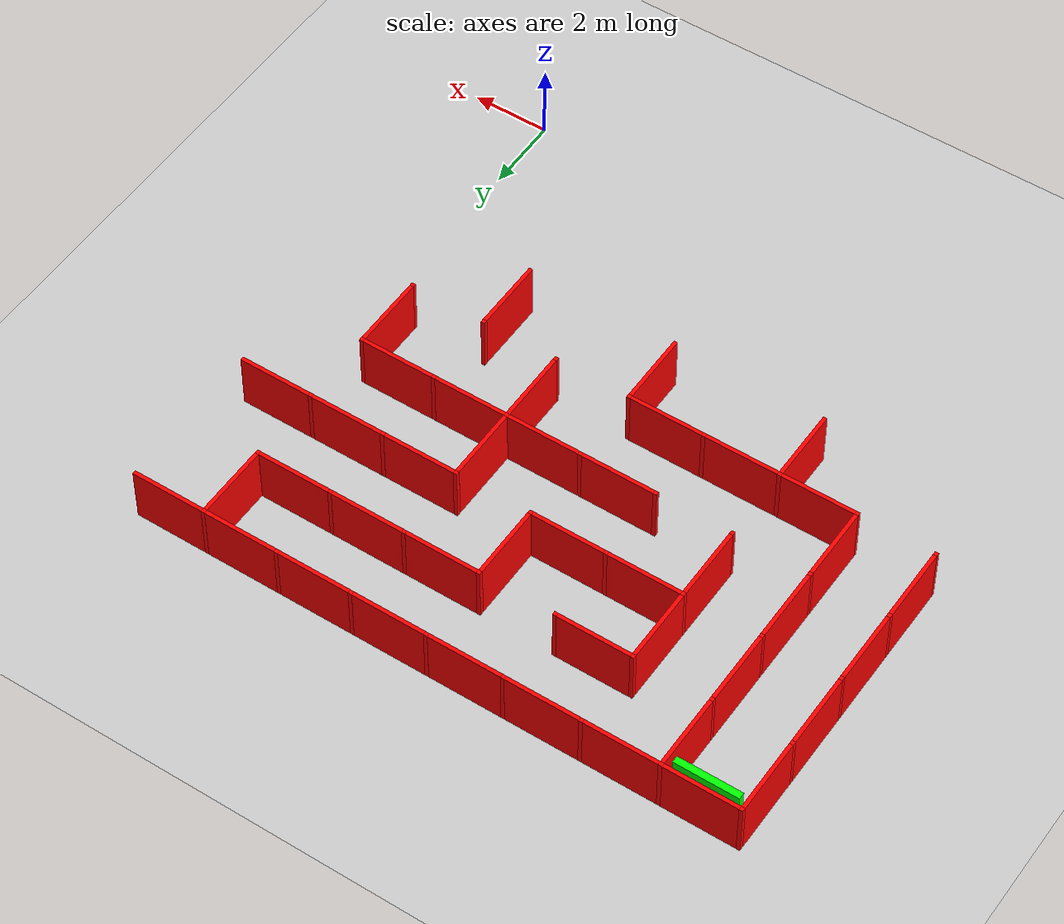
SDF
<sdf version="1.7">
 <world name="empty">
  <model name="ground_plane">
   <static>true</static>
   <link name="link">
    <collision name="collision1">
     <geometry><plane><normal>0 0 1</normal><size>1 1</size></plane></geometry>
    </collision>
    <visual name="visual1"><geometry><plane><normal>0 0 1</normal><size>100 100</size></plane></geometry></visual>
   </link>
  </model>
  <model name="Untitled">
   <link name="Wall_0_0_h">
    <collision name="Wall_0_Collision">
     <geometry><box><size>1.9 0.1 1.5</size></box></geometry>
     <pose>0 0 0.75 0 -0 0</pose>
    </collision>
    <visual name="Wall_0_Visual">
     <pose>0 0 0.75 0 -0 0</pose>
     <geometry><box><size>1.9 0.1 1.5</size></box></geometry>
     <material><ambient>1 0 0 1</ambient><diffuse>1 0 0 1</diffuse><specular>0.1 0.1 0.1 1</specular></material>
     <meta><layer>0</layer></meta>
    </visual>
    <pose>-14 15 0 0 -0 0</pose>
   </link>
   <link name="Wall_0_0_v">
    <collision name="Wall_0_Collision">
     <geometry><box><size>1.9 0.1 1.5</size></box></geometry>
     <pose>0 0 0.75 0 -0 0</pose>
    </collision>
    <visual name="Wall_0_Visual">
     <pose>0 0 0.75 0 -0 0</pose>
     <geometry><box><size>1.9 0.1 1.5</size></box></geometry>
     <material><ambient>1 0 0 1</ambient><diffuse>1 0 0 1</diffuse><specular>0.1 0.1 0.1 1</specular></material>
     <meta><layer>0</layer></meta>
    </visual>
    <pose>-15 14 0 0 -0 1.5708</pose>
   </link>
   <link name="Joint_-15_15">
    <collision name="Wall_2_Collision">
     <geometry><box><size>0.1 0.1 1.5</size></box></geometry>
     <pose>0 0 0.75 0 -0 0</pose>
    </collision>
    <visual name="Wall_2_Visual">
     <pose>0 0 0.75 0 -0 0</pose>
     <geometry><box><size>0.1 0.1 1.5</size></box></geometry>
     <material><ambient>1 0 0 1</ambient><diffuse>1 0 0 1</diffuse><specular>0.1 0.1 0.1 1</specular></material>
     <meta><layer>0</layer></meta>
    </visual>
    <pose>-15 15 0 0 -0 0</pose>
   </link>
   <link name="Wall_1_0_h">
    <collision name="Wall_0_Collision">
     <geometry><box><size>1.9 0.1 1.5</size></box></geometry>
     <pose>0 0 0.75 0 -0 0</pose>
    </collision>
    <visual name="Wall_0_Visual">
     <pose>0 0 0.75 0 -0 0</pose>
     <geometry><box><size>1.9 0.1 1.5</size></box></geometry>
     <material><ambient>1 0 0 1</ambient><diffuse>1 0 0 1</diffuse><specular>0.1 0.1 0.1 1</specular></material>
     <meta><layer>0</layer></meta>
    </visual>
    <pose>-12 15 0 0 -0 0</pose>
   </link>
   <link name="Wall_1_0_v">
    <collision name="Wall_0_Collision">
     <geometry><box><size>1.9 0.1 1.5</size></box></geometry>
     <pose>0 0 0.75 0 -0 0</pose>
    </collision>
    <visual name="Wall_0_Visual">
     <pose>0 0 0.75 0 -0 0</pose>
     <geometry><box><size>1.9 0.1 1.5</size></box></geometry>
     <material><ambient>1 0 0 1</ambient><diffuse>1 0 0 1</diffuse><specular>0.1 0.1 0.1 1</specular></material>
     <meta><layer>0</layer></meta>
    </visual>
    <pose>-13 14 0 0 -0 1.5708</pose>
   </link>
   <link name="Joint_-13_15">
    <collision name="Wall_2_Collision">
     <geometry><box><size>0.1 0.1 1.5</size></box></geometry>
     <pose>0 0 0.75 0 -0 0</pose>
    </collision>
    <visual name="Wall_2_Visual">
     <pose>0 0 0.75 0 -0 0</pose>
     <geometry><box><size>0.1 0.1 1.5</size></box></geometry>
     <material><ambient>1 0 0 1</ambient><diffuse>1 0 0 1</diffuse><specular>0.1 0.1 0.1 1</specular></material>
     <meta><layer>0</layer></meta>
    </visual>
    <pose>-13 15 0 0 -0 0</pose>
   </link>
   <link name="Wall_2_0_h">
    <collision name="Wall_0_Collision">
     <geometry><box><size>1.9 0.1 1.5</size></box></geometry>
     <pose>0 0 0.75 0 -0 0</pose>
    </collision>
    <visual name="Wall_0_Visual">
     <pose>0 0 0.75 0 -0 0</pose>
     <geometry><box><size>1.9 0.1 1.5</size></box></geometry>
     <material><ambient>1 0 0 1</ambient><diffuse>1 0 0 1</diffuse><specular>0.1 0.1 0.1 1</specular></material>
     <meta><layer>0</layer></meta>
    </visual>
    <pose>-10 15 0 0 -0 0</pose>
   </link>
   <link name="Joint_-11_15">
    <collision name="Wall_2_Collision">
     <geometry><box><size>0.1 0.1 1.5</size></box></geometry>
     <pose>0 0 0.75 0 -0 0</pose>
    </collision>
    <visual name="Wall_2_Visual">
     <pose>0 0 0.75 0 -0 0</pose>
     <geometry><box><size>0.1 0.1 1.5</size></box></geometry>
     <material><ambient>1 0 0 1</ambient><diffuse>1 0 0 1</diffuse><specular>0.1 0.1 0.1 1</specular></material>
     <meta><layer>0</layer></meta>
    </visual>
    <pose>-11 15 0 0 -0 0</pose>
   </link>
   <link name="Wall_3_0_h">
    <collision name="Wall_0_Collision">
     <geometry><box><size>1.9 0.1 1.5</size></box></geometry>
     <pose>0 0 0.75 0 -0 0</pose>
    </collision>
    <visual name="Wall_0_Visual">
     <pose>0 0 0.75 0 -0 0</pose>
     <geometry><box><size>1.9 0.1 1.5</size></box></geometry>
     <material><ambient>1 0 0 1</ambient><diffuse>1 0 0 1</diffuse><specular>0.1 0.1 0.1 1</specular></material>
     <meta><layer>0</layer></meta>
    </visual>
    <pose>-8 15 0 0 -0 0</pose>
   </link>
   <link name="Joint_-9_15">
    <collision name="Wall_2_Collision">
     <geometry><box><size>0.1 0.1 1.5</size></box></geometry>
     <pose>0 0 0.75 0 -0 0</pose>
    </collision>
    <visual name="Wall_2_Visual">
     <pose>0 0 0.75 0 -0 0</pose>
     <geometry><box><size>0.1 0.1 1.5</size></box></geometry>
     <material><ambient>1 0 0 1</ambient><diffuse>1 0 0 1</diffuse><specular>0.1 0.1 0.1 1</specular></material>
     <meta><layer>0</layer></meta>
    </visual>
    <pose>-9 15 0 0 -0 0</pose>
   </link>
   <link name="Wall_4_0_h">
    <collision name="Wall_0_Collision">
     <geometry><box><size>1.9 0.1 1.5</size></box></geometry>
     <pose>0 0 0.75 0 -0 0</pose>
    </collision>
    <visual name="Wall_0_Visual">
     <pose>0 0 0.75 0 -0 0</pose>
     <geometry><box><size>1.9 0.1 1.5</size></box></geometry>
     <material><ambient>1 0 0 1</ambient><diffuse>1 0 0 1</diffuse><specular>0.1 0.1 0.1 1</specular></material>
     <meta><layer>0</layer></meta>
    </visual>
    <pose>-6 15 0 0 -0 0</pose>
   </link>
   <link name="Joint_-7_15">
    <collision name="Wall_2_Collision">
     <geometry><box><size>0.1 0.1 1.5</size></box></geometry>
     <pose>0 0 0.75 0 -0 0</pose>
    </collision>
    <visual name="Wall_2_Visual">
     <pose>0 0 0.75 0 -0 0</pose>
     <geometry><box><size>0.1 0.1 1.5</size></box></geometry>
     <material><ambient>1 0 0 1</ambient><diffuse>1 0 0 1</diffuse><specular>0.1 0.1 0.1 1</specular></material>
     <meta><layer>0</layer></meta>
    </visual>
    <pose>-7 15 0 0 -0 0</pose>
   </link>
   <link name="Wall_5_0_h">
    <collision name="Wall_0_Collision">
     <geometry><box><size>1.9 0.1 1.5</size></box></geometry>
     <pose>0 0 0.75 0 -0 0</pose>
    </collision>
    <visual name="Wall_0_Visual">
     <pose>0 0 0.75 0 -0 0</pose>
     <geometry><box><size>1.9 0.1 1.5</size></box></geometry>
     <material><ambient>1 0 0 1</ambient><diffuse>1 0 0 1</diffuse><specular>0.1 0.1 0.1 1</specular></material>
     <meta><layer>0</layer></meta>
    </visual>
    <pose>-4 15 0 0 -0 0</pose>
   </link>
   <link name="Joint_-5_15">
    <collision name="Wall_2_Collision">
     <geometry><box><size>0.1 0.1 1.5</size></box></geometry>
     <pose>0 0 0.75 0 -0 0</pose>
    </collision>
    <visual name="Wall_2_Visual">
     <pose>0 0 0.75 0 -0 0</pose>
     <geometry><box><size>0.1 0.1 1.5</size></box></geometry>
     <material><ambient>1 0 0 1</ambient><diffuse>1 0 0 1</diffuse><specular>0.1 0.1 0.1 1</specular></material>
     <meta><layer>0</layer></meta>
    </visual>
    <pose>-5 15 0 0 -0 0</pose>
   </link>
   <link name="Wall_6_0_h">
    <collision name="Wall_0_Collision">
     <geometry><box><size>1.9 0.1 1.5</size></box></geometry>
     <pose>0 0 0.75 0 -0 0</pose>
    </collision>
    <visual name="Wall_0_Visual">
     <pose>0 0 0.75 0 -0 0</pose>
     <geometry><box><size>1.9 0.1 1.5</size></box></geometry>
     <material><ambient>1 0 0 1</ambient><diffuse>1 0 0 1</diffuse><specular>0.1 0.1 0.1 1</specular></material>
     <meta><layer>0</layer></meta>
    </visual>
    <pose>-2 15 0 0 -0 0</pose>
   </link>
   <link name="Joint_-3_15">
    <collision name="Wall_2_Collision">
     <geometry><box><size>0.1 0.1 1.5</size></box></geometry>
     <pose>0 0 0.75 0 -0 0</pose>
    </collision>
    <visual name="Wall_2_Visual">
     <pose>0 0 0.75 0 -0 0</pose>
     <geometry><box><size>0.1 0.1 1.5</size></box></geometry>
     <material><ambient>1 0 0 1</ambient><diffuse>1 0 0 1</diffuse><specular>0.1 0.1 0.1 1</specular></material>
     <meta><layer>0</layer></meta>
    </visual>
    <pose>-3 15 0 0 -0 0</pose>
   </link>
   <link name="Wall_7_0_h">
    <collision name="Wall_0_Collision">
     <geometry><box><size>1.9 0.1 1.5</size></box></geometry>
     <pose>0 0 0.75 0 -0 0</pose>
    </collision>
    <visual name="Wall_0_Visual">
     <pose>0 0 0.75 0 -0 0</pose>
     <geometry><box><size>1.9 0.1 1.5</size></box></geometry>
     <material><ambient>1 0 0 1</ambient><diffuse>1 0 0 1</diffuse><specular>0.1 0.1 0.1 1</specular></material>
     <meta><layer>0</layer></meta>
    </visual>
    <pose>0 15 0 0 -0 0</pose>
   </link>
   <link name="Wall_7_0_v">
    <collision name="Wall_0_Collision">
     <geometry><box><size>1.9 0.1 1.5</size></box></geometry>
     <pose>0 0 0.75 0 -0 0</pose>
    </collision>
    <visual name="Wall_0_Visual">
     <pose>0 0 0.75 0 -0 0</pose>
     <geometry><box><size>1.9 0.1 1.5</size></box></geometry>
     <material><ambient>1 0 0 1</ambient><diffuse>1 0 0 1</diffuse><specular>0.1 0.1 0.1 1</specular></material>
     <meta><layer>0</layer></meta>
    </visual>
    <pose>-1 14 0 0 -0 1.5708</pose>
   </link>
   <link name="Joint_-1_15">
    <collision name="Wall_2_Collision">
     <geometry><box><size>0.1 0.1 1.5</size></box></geometry>
     <pose>0 0 0.75 0 -0 0</pose>
    </collision>
    <visual name="Wall_2_Visual">
     <pose>0 0 0.75 0 -0 0</pose>
     <geometry><box><size>0.1 0.1 1.5</size></box></geometry>
     <material><ambient>1 0 0 1</ambient><diffuse>1 0 0 1</diffuse><specular>0.1 0.1 0.1 1</specular></material>
     <meta><layer>0</layer></meta>
    </visual>
    <pose>-1 15 0 0 -0 0</pose>
   </link>
   <link name="Wall_0_1_v">
    <collision name="Wall_0_Collision">
     <geometry><box><size>1.9 0.1 1.5</size></box></geometry>
     <pose>0 0 0.75 0 -0 0</pose>
    </collision>
    <visual name="Wall_0_Visual">
     <pose>0 0 0.75 0 -0 0</pose>
     <geometry><box><size>1.9 0.1 1.5</size></box></geometry>
     <material><ambient>1 0 0 1</ambient><diffuse>1 0 0 1</diffuse><specular>0.1 0.1 0.1 1</specular></material>
     <meta><layer>0</layer></meta>
    </visual>
    <pose>-15 12 0 0 -0 1.5708</pose>
   </link>
   <link name="Joint_-15_13">
    <collision name="Wall_2_Collision">
     <geometry><box><size>0.1 0.1 1.5</size></box></geometry>
     <pose>0 0 0.75 0 -0 0</pose>
    </collision>
    <visual name="Wall_2_Visual">
     <pose>0 0 0.75 0 -0 0</pose>
     <geometry><box><size>0.1 0.1 1.5</size></box></geometry>
     <material><ambient>1 0 0 1</ambient><diffuse>1 0 0 1</diffuse><specular>0.1 0.1 0.1 1</specular></material>
     <meta><layer>0</layer></meta>
    </visual>
    <pose>-15 13 0 0 -0 0</pose>
   </link>
   <link name="Wall_1_1_v">
    <collision name="Wall_0_Collision">
     <geometry><box><size>1.9 0.1 1.5</size></box></geometry>
     <pose>0 0 0.75 0 -0 0</pose>
    </collision>
    <visual name="Wall_0_Visual">
     <pose>0 0 0.75 0 -0 0</pose>
     <geometry><box><size>1.9 0.1 1.5</size></box></geometry>
     <material><ambient>1 0 0 1</ambient><diffuse>1 0 0 1</diffuse><specular>0.1 0.1 0.1 1</specular></material>
     <meta><layer>0</layer></meta>
    </visual>
    <pose>-13 12 0 0 -0 1.5708</pose>
   </link>
   <link name="Joint_-13_13">
    <collision name="Wall_2_Collision">
     <geometry><box><size>0.1 0.1 1.5</size></box></geometry>
     <pose>0 0 0.75 0 -0 0</pose>
    </collision>
    <visual name="Wall_2_Visual">
     <pose>0 0 0.75 0 -0 0</pose>
     <geometry><box><size>0.1 0.1 1.5</size></box></geometry>
     <material><ambient>1 0 0 1</ambient><diffuse>1 0 0 1</diffuse><specular>0.1 0.1 0.1 1</specular></material>
     <meta><layer>0</layer></meta>
    </visual>
    <pose>-13 13 0 0 -0 0</pose>
   </link>
   <link name="Wall_2_1_h">
    <collision name="Wall_0_Collision">
     <geometry><box><size>1.9 0.1 1.5</size></box></geometry>
     <pose>0 0 0.75 0 -0 0</pose>
    </collision>
    <visual name="Wall_0_Visual">
     <pose>0 0 0.75 0 -0 0</pose>
     <geometry><box><size>1.9 0.1 1.5</size></box></geometry>
     <material><ambient>1 0 0 1</ambient><diffuse>1 0 0 1</diffuse><specular>0.1 0.1 0.1 1</specular></material>
     <meta><layer>0</layer></meta>
    </visual>
    <pose>-10 13 0 0 -0 0</pose>
   </link>
   <link name="Wall_2_1_v">
    <collision name="Wall_0_Collision">
     <geometry><box><size>1.9 0.1 1.5</size></box></geometry>
     <pose>0 0 0.75 0 -0 0</pose>
    </collision>
    <visual name="Wall_0_Visual">
     <pose>0 0 0.75 0 -0 0</pose>
     <geometry><box><size>1.9 0.1 1.5</size></box></geometry>
     <material><ambient>1 0 0 1</ambient><diffuse>1 0 0 1</diffuse><specular>0.1 0.1 0.1 1</specular></material>
     <meta><layer>0</layer></meta>
    </visual>
    <pose>-11 12 0 0 -0 1.5708</pose>
   </link>
   <link name="Joint_-11_13">
    <collision name="Wall_2_Collision">
     <geometry><box><size>0.1 0.1 1.5</size></box></geometry>
     <pose>0 0 0.75 0 -0 0</pose>
    </collision>
    <visual name="Wall_2_Visual">
     <pose>0 0 0.75 0 -0 0</pose>
     <geometry><box><size>0.1 0.1 1.5</size></box></geometry>
     <material><ambient>1 0 0 1</ambient><diffuse>1 0 0 1</diffuse><specular>0.1 0.1 0.1 1</specular></material>
     <meta><layer>0</layer></meta>
    </visual>
    <pose>-11 13 0 0 -0 0</pose>
   </link>
   <link name="Joint_-9_13">
    <collision name="Wall_2_Collision">
     <geometry><box><size>0.1 0.1 1.5</size></box></geometry>
     <pose>0 0 0.75 0 -0 0</pose>
    </collision>
    <visual name="Wall_2_Visual">
     <pose>0 0 0.75 0 -0 0</pose>
     <geometry><box><size>0.1 0.1 1.5</size></box></geometry>
     <material><ambient>1 0 0 1</ambient><diffuse>1 0 0 1</diffuse><specular>0.1 0.1 0.1 1</specular></material>
     <meta><layer>0</layer></meta>
    </visual>
    <pose>-9 13 0 0 -0 0</pose>
   </link>
   <link name="Wall_4_1_h">
    <collision name="Wall_0_Collision">
     <geometry><box><size>1.9 0.1 1.5</size></box></geometry>
     <pose>0 0 0.75 0 -0 0</pose>
    </collision>
    <visual name="Wall_0_Visual">
     <pose>0 0 0.75 0 -0 0</pose>
     <geometry><box><size>1.9 0.1 1.5</size></box></geometry>
     <material><ambient>1 0 0 1</ambient><diffuse>1 0 0 1</diffuse><specular>0.1 0.1 0.1 1</specular></material>
     <meta><layer>0</layer></meta>
    </visual>
    <pose>-6 13 0 0 -0 0</pose>
   </link>
   <link name="Wall_4_1_v">
    <collision name="Wall_0_Collision">
     <geometry><box><size>1.9 0.1 1.5</size></box></geometry>
     <pose>0 0 0.75 0 -0 0</pose>
    </collision>
    <visual name="Wall_0_Visual">
     <pose>0 0 0.75 0 -0 0</pose>
     <geometry><box><size>1.9 0.1 1.5</size></box></geometry>
     <material><ambient>1 0 0 1</ambient><diffuse>1 0 0 1</diffuse><specular>0.1 0.1 0.1 1</specular></material>
     <meta><layer>0</layer></meta>
    </visual>
    <pose>-7 12 0 0 -0 1.5708</pose>
   </link>
   <link name="Joint_-7_13">
    <collision name="Wall_2_Collision">
     <geometry><box><size>0.1 0.1 1.5</size></box></geometry>
     <pose>0 0 0.75 0 -0 0</pose>
    </collision>
    <visual name="Wall_2_Visual">
     <pose>0 0 0.75 0 -0 0</pose>
     <geometry><box><size>0.1 0.1 1.5</size></box></geometry>
     <material><ambient>1 0 0 1</ambient><diffuse>1 0 0 1</diffuse><specular>0.1 0.1 0.1 1</specular></material>
     <meta><layer>0</layer></meta>
    </visual>
    <pose>-7 13 0 0 -0 0</pose>
   </link>
   <link name="Wall_5_1_h">
    <collision name="Wall_0_Collision">
     <geometry><box><size>1.9 0.1 1.5</size></box></geometry>
     <pose>0 0 0.75 0 -0 0</pose>
    </collision>
    <visual name="Wall_0_Visual">
     <pose>0 0 0.75 0 -0 0</pose>
     <geometry><box><size>1.9 0.1 1.5</size></box></geometry>
     <material><ambient>1 0 0 1</ambient><diffuse>1 0 0 1</diffuse><specular>0.1 0.1 0.1 1</specular></material>
     <meta><layer>0</layer></meta>
    </visual>
    <pose>-4 13 0 0 -0 0</pose>
   </link>
   <link name="Joint_-5_13">
    <collision name="Wall_2_Collision">
     <geometry><box><size>0.1 0.1 1.5</size></box></geometry>
     <pose>0 0 0.75 0 -0 0</pose>
    </collision>
    <visual name="Wall_2_Visual">
     <pose>0 0 0.75 0 -0 0</pose>
     <geometry><box><size>0.1 0.1 1.5</size></box></geometry>
     <material><ambient>1 0 0 1</ambient><diffuse>1 0 0 1</diffuse><specular>0.1 0.1 0.1 1</specular></material>
     <meta><layer>0</layer></meta>
    </visual>
    <pose>-5 13 0 0 -0 0</pose>
   </link>
   <link name="Wall_6_1_h">
    <collision name="Wall_0_Collision">
     <geometry><box><size>1.9 0.1 1.5</size></box></geometry>
     <pose>0 0 0.75 0 -0 0</pose>
    </collision>
    <visual name="Wall_0_Visual">
     <pose>0 0 0.75 0 -0 0</pose>
     <geometry><box><size>1.9 0.1 1.5</size></box></geometry>
     <material><ambient>1 0 0 1</ambient><diffuse>1 0 0 1</diffuse><specular>0.1 0.1 0.1 1</specular></material>
     <meta><layer>0</layer></meta>
    </visual>
    <pose>-2 13 0 0 -0 0</pose>
   </link>
   <link name="Joint_-3_13">
    <collision name="Wall_2_Collision">
     <geometry><box><size>0.1 0.1 1.5</size></box></geometry>
     <pose>0 0 0.75 0 -0 0</pose>
    </collision>
    <visual name="Wall_2_Visual">
     <pose>0 0 0.75 0 -0 0</pose>
     <geometry><box><size>0.1 0.1 1.5</size></box></geometry>
     <material><ambient>1 0 0 1</ambient><diffuse>1 0 0 1</diffuse><specular>0.1 0.1 0.1 1</specular></material>
     <meta><layer>0</layer></meta>
    </visual>
    <pose>-3 13 0 0 -0 0</pose>
   </link>
   <link name="Joint_-1_13">
    <collision name="Wall_2_Collision">
     <geometry><box><size>0.1 0.1 1.5</size></box></geometry>
     <pose>0 0 0.75 0 -0 0</pose>
    </collision>
    <visual name="Wall_2_Visual">
     <pose>0 0 0.75 0 -0 0</pose>
     <geometry><box><size>0.1 0.1 1.5</size></box></geometry>
     <material><ambient>1 0 0 1</ambient><diffuse>1 0 0 1</diffuse><specular>0.1 0.1 0.1 1</specular></material>
     <meta><layer>0</layer></meta>
    </visual>
    <pose>-1 13 0 0 -0 0</pose>
   </link>
   <link name="Wall_0_2_v">
    <collision name="Wall_0_Collision">
     <geometry><box><size>1.9 0.1 1.5</size></box></geometry>
     <pose>0 0 0.75 0 -0 0</pose>
    </collision>
    <visual name="Wall_0_Visual">
     <pose>0 0 0.75 0 -0 0</pose>
     <geometry><box><size>1.9 0.1 1.5</size></box></geometry>
     <material><ambient>1 0 0 1</ambient><diffuse>1 0 0 1</diffuse><specular>0.1 0.1 0.1 1</specular></material>
     <meta><layer>0</layer></meta>
    </visual>
    <pose>-15 10 0 0 -0 1.5708</pose>
   </link>
   <link name="Joint_-15_11">
    <collision name="Wall_2_Collision">
     <geometry><box><size>0.1 0.1 1.5</size></box></geometry>
     <pose>0 0 0.75 0 -0 0</pose>
    </collision>
    <visual name="Wall_2_Visual">
     <pose>0 0 0.75 0 -0 0</pose>
     <geometry><box><size>0.1 0.1 1.5</size></box></geometry>
     <material><ambient>1 0 0 1</ambient><diffuse>1 0 0 1</diffuse><specular>0.1 0.1 0.1 1</specular></material>
     <meta><layer>0</layer></meta>
    </visual>
    <pose>-15 11 0 0 -0 0</pose>
   </link>
   <link name="Wall_1_2_v">
    <collision name="Wall_0_Collision">
     <geometry><box><size>1.9 0.1 1.5</size></box></geometry>
     <pose>0 0 0.75 0 -0 0</pose>
    </collision>
    <visual name="Wall_0_Visual">
     <pose>0 0 0.75 0 -0 0</pose>
     <geometry><box><size>1.9 0.1 1.5</size></box></geometry>
     <material><ambient>1 0 0 1</ambient><diffuse>1 0 0 1</diffuse><specular>0.1 0.1 0.1 1</specular></material>
     <meta><layer>0</layer></meta>
    </visual>
    <pose>-13 10 0 0 -0 1.5708</pose>
   </link>
   <link name="Joint_-13_11">
    <collision name="Wall_2_Collision">
     <geometry><box><size>0.1 0.1 1.5</size></box></geometry>
     <pose>0 0 0.75 0 -0 0</pose>
    </collision>
    <visual name="Wall_2_Visual">
     <pose>0 0 0.75 0 -0 0</pose>
     <geometry><box><size>0.1 0.1 1.5</size></box></geometry>
     <material><ambient>1 0 0 1</ambient><diffuse>1 0 0 1</diffuse><specular>0.1 0.1 0.1 1</specular></material>
     <meta><layer>0</layer></meta>
    </visual>
    <pose>-13 11 0 0 -0 0</pose>
   </link>
   <link name="Wall_2_2_h">
    <collision name="Wall_0_Collision">
     <geometry><box><size>1.9 0.1 1.5</size></box></geometry>
     <pose>0 0 0.75 0 -0 0</pose>
    </collision>
    <visual name="Wall_0_Visual">
     <pose>0 0 0.75 0 -0 0</pose>
     <geometry><box><size>1.9 0.1 1.5</size></box></geometry>
     <material><ambient>1 0 0 1</ambient><diffuse>1 0 0 1</diffuse><specular>0.1 0.1 0.1 1</specular></material>
     <meta><layer>0</layer></meta>
    </visual>
    <pose>-10 11 0 0 -0 0</pose>
   </link>
   <link name="Wall_2_2_v">
    <collision name="Wall_0_Collision">
     <geometry><box><size>1.9 0.1 1.5</size></box></geometry>
     <pose>0 0 0.75 0 -0 0</pose>
    </collision>
    <visual name="Wall_0_Visual">
     <pose>0 0 0.75 0 -0 0</pose>
     <geometry><box><size>1.9 0.1 1.5</size></box></geometry>
     <material><ambient>1 0 0 1</ambient><diffuse>1 0 0 1</diffuse><specular>0.1 0.1 0.1 1</specular></material>
     <meta><layer>0</layer></meta>
    </visual>
    <pose>-11 10 0 0 -0 1.5708</pose>
   </link>
   <link name="Joint_-11_11">
    <collision name="Wall_2_Collision">
     <geometry><box><size>0.1 0.1 1.5</size></box></geometry>
     <pose>0 0 0.75 0 -0 0</pose>
    </collision>
    <visual name="Wall_2_Visual">
     <pose>0 0 0.75 0 -0 0</pose>
     <geometry><box><size>0.1 0.1 1.5</size></box></geometry>
     <material><ambient>1 0 0 1</ambient><diffuse>1 0 0 1</diffuse><specular>0.1 0.1 0.1 1</specular></material>
     <meta><layer>0</layer></meta>
    </visual>
    <pose>-11 11 0 0 -0 0</pose>
   </link>
   <link name="Wall_3_2_h">
    <collision name="Wall_0_Collision">
     <geometry><box><size>1.9 0.1 1.5</size></box></geometry>
     <pose>0 0 0.75 0 -0 0</pose>
    </collision>
    <visual name="Wall_0_Visual">
     <pose>0 0 0.75 0 -0 0</pose>
     <geometry><box><size>1.9 0.1 1.5</size></box></geometry>
     <material><ambient>1 0 0 1</ambient><diffuse>1 0 0 1</diffuse><specular>0.1 0.1 0.1 1</specular></material>
     <meta><layer>0</layer></meta>
    </visual>
    <pose>-8 11 0 0 -0 0</pose>
   </link>
   <link name="Joint_-9_11">
    <collision name="Wall_2_Collision">
     <geometry><box><size>0.1 0.1 1.5</size></box></geometry>
     <pose>0 0 0.75 0 -0 0</pose>
    </collision>
    <visual name="Wall_2_Visual">
     <pose>0 0 0.75 0 -0 0</pose>
     <geometry><box><size>0.1 0.1 1.5</size></box></geometry>
     <material><ambient>1 0 0 1</ambient><diffuse>1 0 0 1</diffuse><specular>0.1 0.1 0.1 1</specular></material>
     <meta><layer>0</layer></meta>
    </visual>
    <pose>-9 11 0 0 -0 0</pose>
   </link>
   <link name="Joint_-7_11">
    <collision name="Wall_2_Collision">
     <geometry><box><size>0.1 0.1 1.5</size></box></geometry>
     <pose>0 0 0.75 0 -0 0</pose>
    </collision>
    <visual name="Wall_2_Visual">
     <pose>0 0 0.75 0 -0 0</pose>
     <geometry><box><size>0.1 0.1 1.5</size></box></geometry>
     <material><ambient>1 0 0 1</ambient><diffuse>1 0 0 1</diffuse><specular>0.1 0.1 0.1 1</specular></material>
     <meta><layer>0</layer></meta>
    </visual>
    <pose>-7 11 0 0 -0 0</pose>
   </link>
   <link name="Wall_5_2_h">
    <collision name="Wall_0_Collision">
     <geometry><box><size>1.9 0.1 1.5</size></box></geometry>
     <pose>0 0 0.75 0 -0 0</pose>
    </collision>
    <visual name="Wall_0_Visual">
     <pose>0 0 0.75 0 -0 0</pose>
     <geometry><box><size>1.9 0.1 1.5</size></box></geometry>
     <material><ambient>1 0 0 1</ambient><diffuse>1 0 0 1</diffuse><specular>0.1 0.1 0.1 1</specular></material>
     <meta><layer>0</layer></meta>
    </visual>
    <pose>-4 11 0 0 -0 0</pose>
   </link>
   <link name="Wall_5_2_v">
    <collision name="Wall_0_Collision">
     <geometry><box><size>1.9 0.1 1.5</size></box></geometry>
     <pose>0 0 0.75 0 -0 0</pose>
    </collision>
    <visual name="Wall_0_Visual">
     <pose>0 0 0.75 0 -0 0</pose>
     <geometry><box><size>1.9 0.1 1.5</size></box></geometry>
     <material><ambient>1 0 0 1</ambient><diffuse>1 0 0 1</diffuse><specular>0.1 0.1 0.1 1</specular></material>
     <meta><layer>0</layer></meta>
    </visual>
    <pose>-5 10 0 0 -0 1.5708</pose>
   </link>
   <link name="Joint_-5_11">
    <collision name="Wall_2_Collision">
     <geometry><box><size>0.1 0.1 1.5</size></box></geometry>
     <pose>0 0 0.75 0 -0 0</pose>
    </collision>
    <visual name="Wall_2_Visual">
     <pose>0 0 0.75 0 -0 0</pose>
     <geometry><box><size>0.1 0.1 1.5</size></box></geometry>
     <material><ambient>1 0 0 1</ambient><diffuse>1 0 0 1</diffuse><specular>0.1 0.1 0.1 1</specular></material>
     <meta><layer>0</layer></meta>
    </visual>
    <pose>-5 11 0 0 -0 0</pose>
   </link>
   <link name="Wall_6_2_h">
    <collision name="Wall_0_Collision">
     <geometry><box><size>1.9 0.1 1.5</size></box></geometry>
     <pose>0 0 0.75 0 -0 0</pose>
    </collision>
    <visual name="Wall_0_Visual">
     <pose>0 0 0.75 0 -0 0</pose>
     <geometry><box><size>1.9 0.1 1.5</size></box></geometry>
     <material><ambient>1 0 0 1</ambient><diffuse>1 0 0 1</diffuse><specular>0.1 0.1 0.1 1</specular></material>
     <meta><layer>0</layer></meta>
    </visual>
    <pose>-2 11 0 0 -0 0</pose>
   </link>
   <link name="Joint_-3_11">
    <collision name="Wall_2_Collision">
     <geometry><box><size>0.1 0.1 1.5</size></box></geometry>
     <pose>0 0 0.75 0 -0 0</pose>
    </collision>
    <visual name="Wall_2_Visual">
     <pose>0 0 0.75 0 -0 0</pose>
     <geometry><box><size>0.1 0.1 1.5</size></box></geometry>
     <material><ambient>1 0 0 1</ambient><diffuse>1 0 0 1</diffuse><specular>0.1 0.1 0.1 1</specular></material>
     <meta><layer>0</layer></meta>
    </visual>
    <pose>-3 11 0 0 -0 0</pose>
   </link>
   <link name="Wall_7_2_h">
    <collision name="Wall_0_Collision">
     <geometry><box><size>1.9 0.1 1.5</size></box></geometry>
     <pose>0 0 0.75 0 -0 0</pose>
    </collision>
    <visual name="Wall_0_Visual">
     <pose>0 0 0.75 0 -0 0</pose>
     <geometry><box><size>1.9 0.1 1.5</size></box></geometry>
     <material><ambient>1 0 0 1</ambient><diffuse>1 0 0 1</diffuse><specular>0.1 0.1 0.1 1</specular></material>
     <meta><layer>0</layer></meta>
    </visual>
    <pose>0 11 0 0 -0 0</pose>
   </link>
   <link name="Joint_-1_11">
    <collision name="Wall_2_Collision">
     <geometry><box><size>0.1 0.1 1.5</size></box></geometry>
     <pose>0 0 0.75 0 -0 0</pose>
    </collision>
    <visual name="Wall_2_Visual">
     <pose>0 0 0.75 0 -0 0</pose>
     <geometry><box><size>0.1 0.1 1.5</size></box></geometry>
     <material><ambient>1 0 0 1</ambient><diffuse>1 0 0 1</diffuse><specular>0.1 0.1 0.1 1</specular></material>
     <meta><layer>0</layer></meta>
    </visual>
    <pose>-1 11 0 0 -0 0</pose>
   </link>
   <link name="Wall_0_3_v">
    <collision name="Wall_0_Collision">
     <geometry><box><size>1.9 0.1 1.5</size></box></geometry>
     <pose>0 0 0.75 0 -0 0</pose>
    </collision>
    <visual name="Wall_0_Visual">
     <pose>0 0 0.75 0 -0 0</pose>
     <geometry><box><size>1.9 0.1 1.5</size></box></geometry>
     <material><ambient>1 0 0 1</ambient><diffuse>1 0 0 1</diffuse><specular>0.1 0.1 0.1 1</specular></material>
     <meta><layer>0</layer></meta>
    </visual>
    <pose>-15 8 0 0 -0 1.5708</pose>
   </link>
   <link name="Joint_-15_9">
    <collision name="Wall_2_Collision">
     <geometry><box><size>0.1 0.1 1.5</size></box></geometry>
     <pose>0 0 0.75 0 -0 0</pose>
    </collision>
    <visual name="Wall_2_Visual">
     <pose>0 0 0.75 0 -0 0</pose>
     <geometry><box><size>0.1 0.1 1.5</size></box></geometry>
     <material><ambient>1 0 0 1</ambient><diffuse>1 0 0 1</diffuse><specular>0.1 0.1 0.1 1</specular></material>
     <meta><layer>0</layer></meta>
    </visual>
    <pose>-15 9 0 0 -0 0</pose>
   </link>
   <link name="Wall_1_3_v">
    <collision name="Wall_0_Collision">
     <geometry><box><size>1.9 0.1 1.5</size></box></geometry>
     <pose>0 0 0.75 0 -0 0</pose>
    </collision>
    <visual name="Wall_0_Visual">
     <pose>0 0 0.75 0 -0 0</pose>
     <geometry><box><size>1.9 0.1 1.5</size></box></geometry>
     <material><ambient>1 0 0 1</ambient><diffuse>1 0 0 1</diffuse><specular>0.1 0.1 0.1 1</specular></material>
     <meta><layer>0</layer></meta>
    </visual>
    <pose>-13 8 0 0 -0 1.5708</pose>
   </link>
   <link name="Joint_-13_9">
    <collision name="Wall_2_Collision">
     <geometry><box><size>0.1 0.1 1.5</size></box></geometry>
     <pose>0 0 0.75 0 -0 0</pose>
    </collision>
    <visual name="Wall_2_Visual">
     <pose>0 0 0.75 0 -0 0</pose>
     <geometry><box><size>0.1 0.1 1.5</size></box></geometry>
     <material><ambient>1 0 0 1</ambient><diffuse>1 0 0 1</diffuse><specular>0.1 0.1 0.1 1</specular></material>
     <meta><layer>0</layer></meta>
    </visual>
    <pose>-13 9 0 0 -0 0</pose>
   </link>
   <link name="Joint_-11_9">
    <collision name="Wall_2_Collision">
     <geometry><box><size>0.1 0.1 1.5</size></box></geometry>
     <pose>0 0 0.75 0 -0 0</pose>
    </collision>
    <visual name="Wall_2_Visual">
     <pose>0 0 0.75 0 -0 0</pose>
     <geometry><box><size>0.1 0.1 1.5</size></box></geometry>
     <material><ambient>1 0 0 1</ambient><diffuse>1 0 0 1</diffuse><specular>0.1 0.1 0.1 1</specular></material>
     <meta><layer>0</layer></meta>
    </visual>
    <pose>-11 9 0 0 -0 0</pose>
   </link>
   <link name="Wall_3_3_h">
    <collision name="Wall_0_Collision">
     <geometry><box><size>1.9 0.1 1.5</size></box></geometry>
     <pose>0 0 0.75 0 -0 0</pose>
    </collision>
    <visual name="Wall_0_Visual">
     <pose>0 0 0.75 0 -0 0</pose>
     <geometry><box><size>1.9 0.1 1.5</size></box></geometry>
     <material><ambient>1 0 0 1</ambient><diffuse>1 0 0 1</diffuse><specular>0.1 0.1 0.1 1</specular></material>
     <meta><layer>0</layer></meta>
    </visual>
    <pose>-8 9 0 0 -0 0</pose>
   </link>
   <link name="Joint_-9_9">
    <collision name="Wall_2_Collision">
     <geometry><box><size>0.1 0.1 1.5</size></box></geometry>
     <pose>0 0 0.75 0 -0 0</pose>
    </collision>
    <visual name="Wall_2_Visual">
     <pose>0 0 0.75 0 -0 0</pose>
     <geometry><box><size>0.1 0.1 1.5</size></box></geometry>
     <material><ambient>1 0 0 1</ambient><diffuse>1 0 0 1</diffuse><specular>0.1 0.1 0.1 1</specular></material>
     <meta><layer>0</layer></meta>
    </visual>
    <pose>-9 9 0 0 -0 0</pose>
   </link>
   <link name="Wall_4_3_h">
    <collision name="Wall_0_Collision">
     <geometry><box><size>1.9 0.1 1.5</size></box></geometry>
     <pose>0 0 0.75 0 -0 0</pose>
    </collision>
    <visual name="Wall_0_Visual">
     <pose>0 0 0.75 0 -0 0</pose>
     <geometry><box><size>1.9 0.1 1.5</size></box></geometry>
     <material><ambient>1 0 0 1</ambient><diffuse>1 0 0 1</diffuse><specular>0.1 0.1 0.1 1</specular></material>
     <meta><layer>0</layer></meta>
    </visual>
    <pose>-6 9 0 0 -0 0</pose>
   </link>
   <link name="Joint_-7_9">
    <collision name="Wall_2_Collision">
     <geometry><box><size>0.1 0.1 1.5</size></box></geometry>
     <pose>0 0 0.75 0 -0 0</pose>
    </collision>
    <visual name="Wall_2_Visual">
     <pose>0 0 0.75 0 -0 0</pose>
     <geometry><box><size>0.1 0.1 1.5</size></box></geometry>
     <material><ambient>1 0 0 1</ambient><diffuse>1 0 0 1</diffuse><specular>0.1 0.1 0.1 1</specular></material>
     <meta><layer>0</layer></meta>
    </visual>
    <pose>-7 9 0 0 -0 0</pose>
   </link>
   <link name="Wall_5_3_h">
    <collision name="Wall_0_Collision">
     <geometry><box><size>1.9 0.1 1.5</size></box></geometry>
     <pose>0 0 0.75 0 -0 0</pose>
    </collision>
    <visual name="Wall_0_Visual">
     <pose>0 0 0.75 0 -0 0</pose>
     <geometry><box><size>1.9 0.1 1.5</size></box></geometry>
     <material><ambient>1 0 0 1</ambient><diffuse>1 0 0 1</diffuse><specular>0.1 0.1 0.1 1</specular></material>
     <meta><layer>0</layer></meta>
    </visual>
    <pose>-4 9 0 0 -0 0</pose>
   </link>
   <link name="Wall_5_3_v">
    <collision name="Wall_0_Collision">
     <geometry><box><size>1.9 0.1 1.5</size></box></geometry>
     <pose>0 0 0.75 0 -0 0</pose>
    </collision>
    <visual name="Wall_0_Visual">
     <pose>0 0 0.75 0 -0 0</pose>
     <geometry><box><size>1.9 0.1 1.5</size></box></geometry>
     <material><ambient>1 0 0 1</ambient><diffuse>1 0 0 1</diffuse><specular>0.1 0.1 0.1 1</specular></material>
     <meta><layer>0</layer></meta>
    </visual>
    <pose>-5 8 0 0 -0 1.5708</pose>
   </link>
   <link name="Joint_-5_9">
    <collision name="Wall_2_Collision">
     <geometry><box><size>0.1 0.1 1.5</size></box></geometry>
     <pose>0 0 0.75 0 -0 0</pose>
    </collision>
    <visual name="Wall_2_Visual">
     <pose>0 0 0.75 0 -0 0</pose>
     <geometry><box><size>0.1 0.1 1.5</size></box></geometry>
     <material><ambient>1 0 0 1</ambient><diffuse>1 0 0 1</diffuse><specular>0.1 0.1 0.1 1</specular></material>
     <meta><layer>0</layer></meta>
    </visual>
    <pose>-5 9 0 0 -0 0</pose>
   </link>
   <link name="Wall_6_3_h">
    <collision name="Wall_0_Collision">
     <geometry><box><size>1.9 0.1 1.5</size></box></geometry>
     <pose>0 0 0.75 0 -0 0</pose>
    </collision>
    <visual name="Wall_0_Visual">
     <pose>0 0 0.75 0 -0 0</pose>
     <geometry><box><size>1.9 0.1 1.5</size></box></geometry>
     <material><ambient>1 0 0 1</ambient><diffuse>1 0 0 1</diffuse><specular>0.1 0.1 0.1 1</specular></material>
     <meta><layer>0</layer></meta>
    </visual>
    <pose>-2 9 0 0 -0 0</pose>
   </link>
   <link name="Joint_-3_9">
    <collision name="Wall_2_Collision">
     <geometry><box><size>0.1 0.1 1.5</size></box></geometry>
     <pose>0 0 0.75 0 -0 0</pose>
    </collision>
    <visual name="Wall_2_Visual">
     <pose>0 0 0.75 0 -0 0</pose>
     <geometry><box><size>0.1 0.1 1.5</size></box></geometry>
     <material><ambient>1 0 0 1</ambient><diffuse>1 0 0 1</diffuse><specular>0.1 0.1 0.1 1</specular></material>
     <meta><layer>0</layer></meta>
    </visual>
    <pose>-3 9 0 0 -0 0</pose>
   </link>
   <link name="Wall_7_3_v">
    <collision name="Wall_0_Collision">
     <geometry><box><size>1.9 0.1 1.5</size></box></geometry>
     <pose>0 0 0.75 0 -0 0</pose>
    </collision>
    <visual name="Wall_0_Visual">
     <pose>0 0 0.75 0 -0 0</pose>
     <geometry><box><size>1.9 0.1 1.5</size></box></geometry>
     <material><ambient>1 0 0 1</ambient><diffuse>1 0 0 1</diffuse><specular>0.1 0.1 0.1 1</specular></material>
     <meta><layer>0</layer></meta>
    </visual>
    <pose>-1 8 0 0 -0 1.5708</pose>
   </link>
   <link name="Joint_-1_9">
    <collision name="Wall_2_Collision">
     <geometry><box><size>0.1 0.1 1.5</size></box></geometry>
     <pose>0 0 0.75 0 -0 0</pose>
    </collision>
    <visual name="Wall_2_Visual">
     <pose>0 0 0.75 0 -0 0</pose>
     <geometry><box><size>0.1 0.1 1.5</size></box></geometry>
     <material><ambient>1 0 0 1</ambient><diffuse>1 0 0 1</diffuse><specular>0.1 0.1 0.1 1</specular></material>
     <meta><layer>0</layer></meta>
    </visual>
    <pose>-1 9 0 0 -0 0</pose>
   </link>
   <link name="Joint_-15_7">
    <collision name="Wall_2_Collision">
     <geometry><box><size>0.1 0.1 1.5</size></box></geometry>
     <pose>0 0 0.75 0 -0 0</pose>
    </collision>
    <visual name="Wall_2_Visual">
     <pose>0 0 0.75 0 -0 0</pose>
     <geometry><box><size>0.1 0.1 1.5</size></box></geometry>
     <material><ambient>1 0 0 1</ambient><diffuse>1 0 0 1</diffuse><specular>0.1 0.1 0.1 1</specular></material>
     <meta><layer>0</layer></meta>
    </visual>
    <pose>-15 7 0 0 -0 0</pose>
   </link>
   <link name="Wall_1_4_h">
    <collision name="Wall_0_Collision">
     <geometry><box><size>1.9 0.1 1.5</size></box></geometry>
     <pose>0 0 0.75 0 -0 0</pose>
    </collision>
    <visual name="Wall_0_Visual">
     <pose>0 0 0.75 0 -0 0</pose>
     <geometry><box><size>1.9 0.1 1.5</size></box></geometry>
     <material><ambient>1 0 0 1</ambient><diffuse>1 0 0 1</diffuse><specular>0.1 0.1 0.1 1</specular></material>
     <meta><layer>0</layer></meta>
    </visual>
    <pose>-12 7 0 0 -0 0</pose>
   </link>
   <link name="Joint_-13_7">
    <collision name="Wall_2_Collision">
     <geometry><box><size>0.1 0.1 1.5</size></box></geometry>
     <pose>0 0 0.75 0 -0 0</pose>
    </collision>
    <visual name="Wall_2_Visual">
     <pose>0 0 0.75 0 -0 0</pose>
     <geometry><box><size>0.1 0.1 1.5</size></box></geometry>
     <material><ambient>1 0 0 1</ambient><diffuse>1 0 0 1</diffuse><specular>0.1 0.1 0.1 1</specular></material>
     <meta><layer>0</layer></meta>
    </visual>
    <pose>-13 7 0 0 -0 0</pose>
   </link>
   <link name="Wall_2_4_h">
    <collision name="Wall_0_Collision">
     <geometry><box><size>1.9 0.1 1.5</size></box></geometry>
     <pose>0 0 0.75 0 -0 0</pose>
    </collision>
    <visual name="Wall_0_Visual">
     <pose>0 0 0.75 0 -0 0</pose>
     <geometry><box><size>1.9 0.1 1.5</size></box></geometry>
     <material><ambient>1 0 0 1</ambient><diffuse>1 0 0 1</diffuse><specular>0.1 0.1 0.1 1</specular></material>
     <meta><layer>0</layer></meta>
    </visual>
    <pose>-10 7 0 0 -0 0</pose>
   </link>
   <link name="Wall_2_4_v">
    <collision name="Wall_0_Collision">
     <geometry><box><size>1.9 0.1 1.5</size></box></geometry>
     <pose>0 0 0.75 0 -0 0</pose>
    </collision>
    <visual name="Wall_0_Visual">
     <pose>0 0 0.75 0 -0 0</pose>
     <geometry><box><size>1.9 0.1 1.5</size></box></geometry>
     <material><ambient>1 0 0 1</ambient><diffuse>1 0 0 1</diffuse><specular>0.1 0.1 0.1 1</specular></material>
     <meta><layer>0</layer></meta>
    </visual>
    <pose>-11 6 0 0 -0 1.5708</pose>
   </link>
   <link name="Joint_-11_7">
    <collision name="Wall_2_Collision">
     <geometry><box><size>0.1 0.1 1.5</size></box></geometry>
     <pose>0 0 0.75 0 -0 0</pose>
    </collision>
    <visual name="Wall_2_Visual">
     <pose>0 0 0.75 0 -0 0</pose>
     <geometry><box><size>0.1 0.1 1.5</size></box></geometry>
     <material><ambient>1 0 0 1</ambient><diffuse>1 0 0 1</diffuse><specular>0.1 0.1 0.1 1</specular></material>
     <meta><layer>0</layer></meta>
    </visual>
    <pose>-11 7 0 0 -0 0</pose>
   </link>
   <link name="Wall_3_4_h">
    <collision name="Wall_0_Collision">
     <geometry><box><size>1.9 0.1 1.5</size></box></geometry>
     <pose>0 0 0.75 0 -0 0</pose>
    </collision>
    <visual name="Wall_0_Visual">
     <pose>0 0 0.75 0 -0 0</pose>
     <geometry><box><size>1.9 0.1 1.5</size></box></geometry>
     <material><ambient>1 0 0 1</ambient><diffuse>1 0 0 1</diffuse><specular>0.1 0.1 0.1 1</specular></material>
     <meta><layer>0</layer></meta>
    </visual>
    <pose>-8 7 0 0 -0 0</pose>
   </link>
   <link name="Joint_-9_7">
    <collision name="Wall_2_Collision">
     <geometry><box><size>0.1 0.1 1.5</size></box></geometry>
     <pose>0 0 0.75 0 -0 0</pose>
    </collision>
    <visual name="Wall_2_Visual">
     <pose>0 0 0.75 0 -0 0</pose>
     <geometry><box><size>0.1 0.1 1.5</size></box></geometry>
     <material><ambient>1 0 0 1</ambient><diffuse>1 0 0 1</diffuse><specular>0.1 0.1 0.1 1</specular></material>
     <meta><layer>0</layer></meta>
    </visual>
    <pose>-9 7 0 0 -0 0</pose>
   </link>
   <link name="Wall_4_4_v">
    <collision name="Wall_0_Collision">
     <geometry><box><size>1.9 0.1 1.5</size></box></geometry>
     <pose>0 0 0.75 0 -0 0</pose>
    </collision>
    <visual name="Wall_0_Visual">
     <pose>0 0 0.75 0 -0 0</pose>
     <geometry><box><size>1.9 0.1 1.5</size></box></geometry>
     <material><ambient>1 0 0 1</ambient><diffuse>1 0 0 1</diffuse><specular>0.1 0.1 0.1 1</specular></material>
     <meta><layer>0</layer></meta>
    </visual>
    <pose>-7 6 0 0 -0 1.5708</pose>
   </link>
   <link name="Joint_-7_7">
    <collision name="Wall_2_Collision">
     <geometry><box><size>0.1 0.1 1.5</size></box></geometry>
     <pose>0 0 0.75 0 -0 0</pose>
    </collision>
    <visual name="Wall_2_Visual">
     <pose>0 0 0.75 0 -0 0</pose>
     <geometry><box><size>0.1 0.1 1.5</size></box></geometry>
     <material><ambient>1 0 0 1</ambient><diffuse>1 0 0 1</diffuse><specular>0.1 0.1 0.1 1</specular></material>
     <meta><layer>0</layer></meta>
    </visual>
    <pose>-7 7 0 0 -0 0</pose>
   </link>
   <link name="Joint_-5_7">
    <collision name="Wall_2_Collision">
     <geometry><box><size>0.1 0.1 1.5</size></box></geometry>
     <pose>0 0 0.75 0 -0 0</pose>
    </collision>
    <visual name="Wall_2_Visual">
     <pose>0 0 0.75 0 -0 0</pose>
     <geometry><box><size>0.1 0.1 1.5</size></box></geometry>
     <material><ambient>1 0 0 1</ambient><diffuse>1 0 0 1</diffuse><specular>0.1 0.1 0.1 1</specular></material>
     <meta><layer>0</layer></meta>
    </visual>
    <pose>-5 7 0 0 -0 0</pose>
   </link>
   <link name="Wall_6_4_v">
    <collision name="Wall_0_Collision">
     <geometry><box><size>1.9 0.1 1.5</size></box></geometry>
     <pose>0 0 0.75 0 -0 0</pose>
    </collision>
    <visual name="Wall_0_Visual">
     <pose>0 0 0.75 0 -0 0</pose>
     <geometry><box><size>1.9 0.1 1.5</size></box></geometry>
     <material><ambient>1 0 0 1</ambient><diffuse>1 0 0 1</diffuse><specular>0.1 0.1 0.1 1</specular></material>
     <meta><layer>0</layer></meta>
    </visual>
    <pose>-3 6 0 0 -0 1.5708</pose>
   </link>
   <link name="Joint_-3_7">
    <collision name="Wall_2_Collision">
     <geometry><box><size>0.1 0.1 1.5</size></box></geometry>
     <pose>0 0 0.75 0 -0 0</pose>
    </collision>
    <visual name="Wall_2_Visual">
     <pose>0 0 0.75 0 -0 0</pose>
     <geometry><box><size>0.1 0.1 1.5</size></box></geometry>
     <material><ambient>1 0 0 1</ambient><diffuse>1 0 0 1</diffuse><specular>0.1 0.1 0.1 1</specular></material>
     <meta><layer>0</layer></meta>
    </visual>
    <pose>-3 7 0 0 -0 0</pose>
   </link>
   <link name="Joint_-1_7">
    <collision name="Wall_2_Collision">
     <geometry><box><size>0.1 0.1 1.5</size></box></geometry>
     <pose>0 0 0.75 0 -0 0</pose>
    </collision>
    <visual name="Wall_2_Visual">
     <pose>0 0 0.75 0 -0 0</pose>
     <geometry><box><size>0.1 0.1 1.5</size></box></geometry>
     <material><ambient>1 0 0 1</ambient><diffuse>1 0 0 1</diffuse><specular>0.1 0.1 0.1 1</specular></material>
     <meta><layer>0</layer></meta>
    </visual>
    <pose>-1 7 0 0 -0 0</pose>
   </link>
   <static>true</static>
  </model>
  <model name="goal_marker">
   <link name="link">
    <inertial>
     <mass>0.557325</mass>
     <inertia>
      <ixx>0.167039</ixx>
      <ixy>0</ixy>
      <ixz>0</ixz>
      <iyy>0.293023</iyy>
      <iyz>0</iyz>
      <izz>0.128933</izz>
     </inertia>
    </inertial>
    <pose>0.162468 0.314833 -0.028561 0 -0 0</pose>
    <visual name="visual">
     <geometry><box><size>1.65661 0.178178 1.88808</size></box></geometry>
     <material><ambient>0 1 0 1</ambient><diffuse>0 1 0 1</diffuse><specular>0.1 0.1 0.1 1</specular></material>
    </visual>
    <collision name="collision">
     <geometry><box><size>1.65661 0.178178 1.88808</size></box></geometry>
     <surface>
      <friction>
       <ode><mu>1</mu><mu2>1</mu2><fdir1>0 0 0</fdir1><slip1>0</slip1><slip2>0</slip2></ode>
       <torsional>
        <coefficient>1</coefficient>
        <patch_radius>0</patch_radius>
        <surface_radius>0</surface_radius>
        <use_patch_radius>1</use_patch_radius>
        <ode><slip>0</slip></ode>
       </torsional>
      </friction>
      <bounce><restitution_coefficient>0</restitution_coefficient><threshold>1e+06</threshold></bounce>
      <contact>
       <collide_without_contact>0</collide_without_contact>
       <collide_without_contact_bitmask>1</collide_without_contact_bitmask>
       <collide_bitmask>1</collide_bitmask>
       <ode>
        <soft_cfm>0</soft_cfm>
        <soft_erp>0.2</soft_erp>
        <kp>1e+13</kp>
        <kd>1</kd>
        <max_vel>0.01</max_vel>
        <min_depth>0</min_depth>
       </ode>
       <bullet>
        <split_impulse>1</split_impulse>
        <split_impulse_penetration_threshold>-0.01</split_impulse_penetration_threshold>
        <soft_cfm>0</soft_cfm>
        <soft_erp>0.2</soft_erp>
        <kp>1e+13</kp>
        <kd>1</kd>
       </bullet>
      </contact>
     </surface>
    </collision>
   </link>
   <static>0</static>
   <pose>-14.1305 14.3706 0.5 0 0 -0.000261</pose>
  </model>
 </world>
</sdf>
